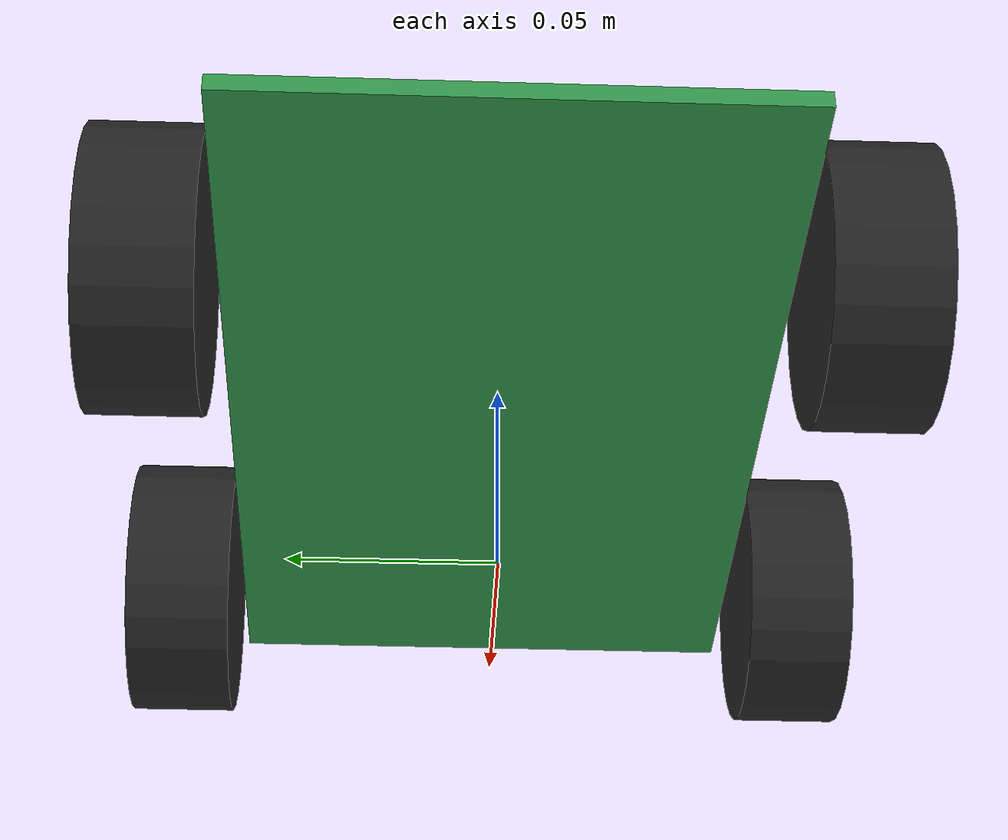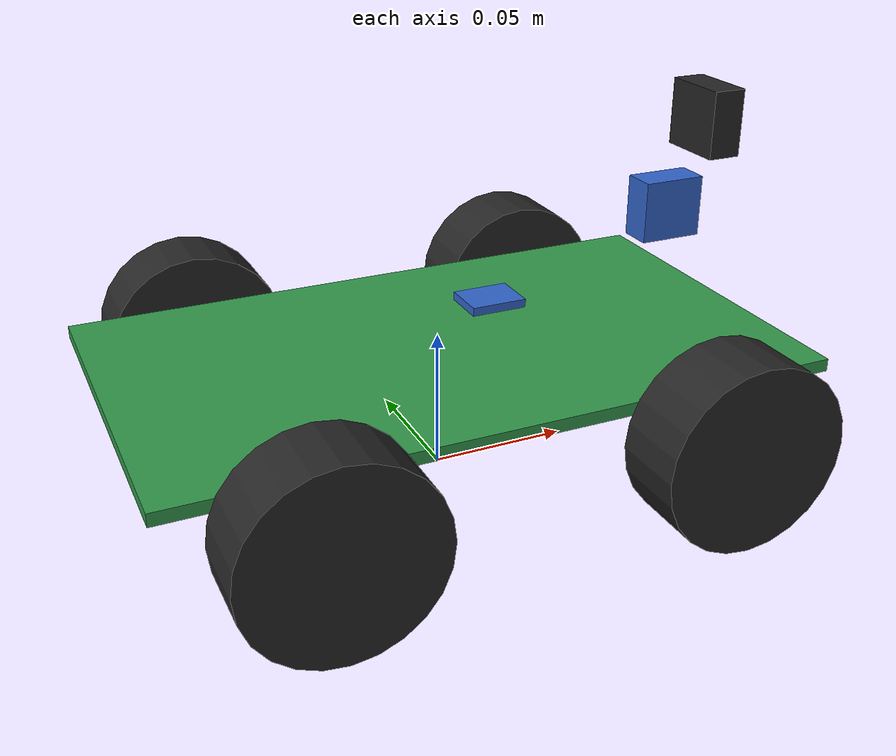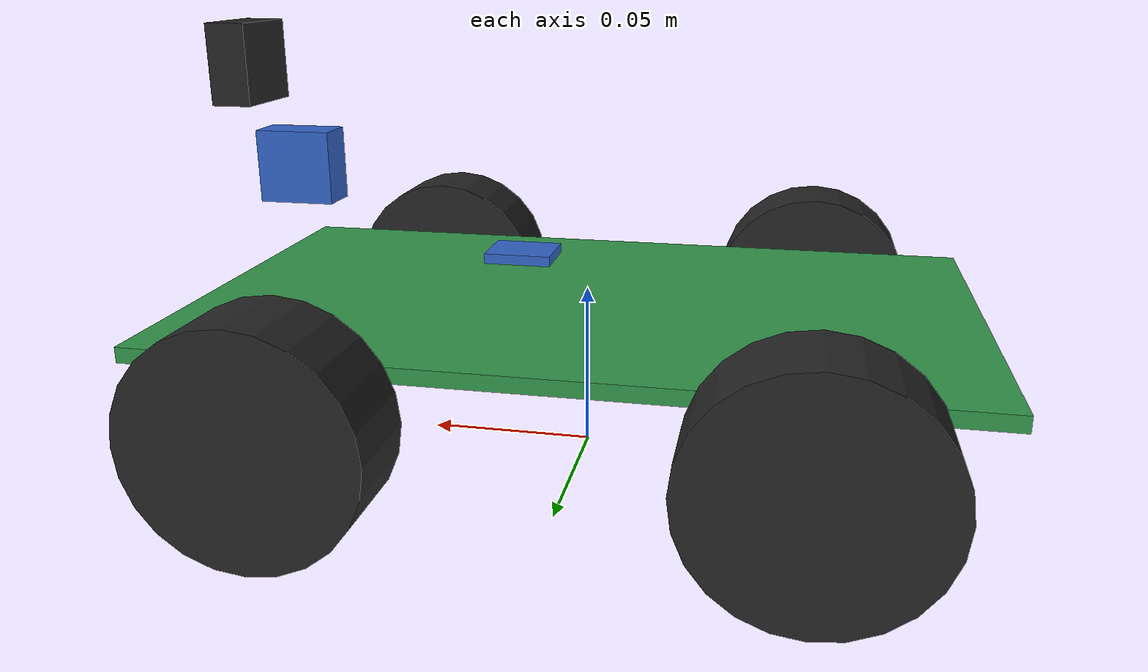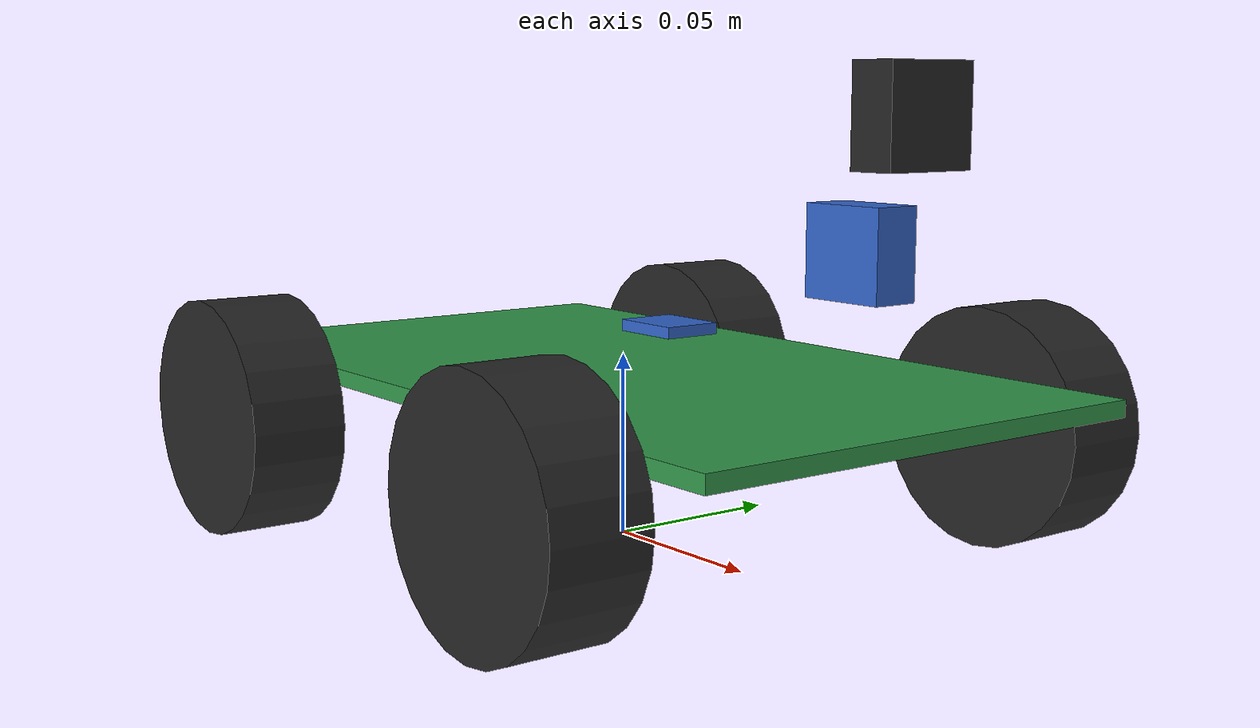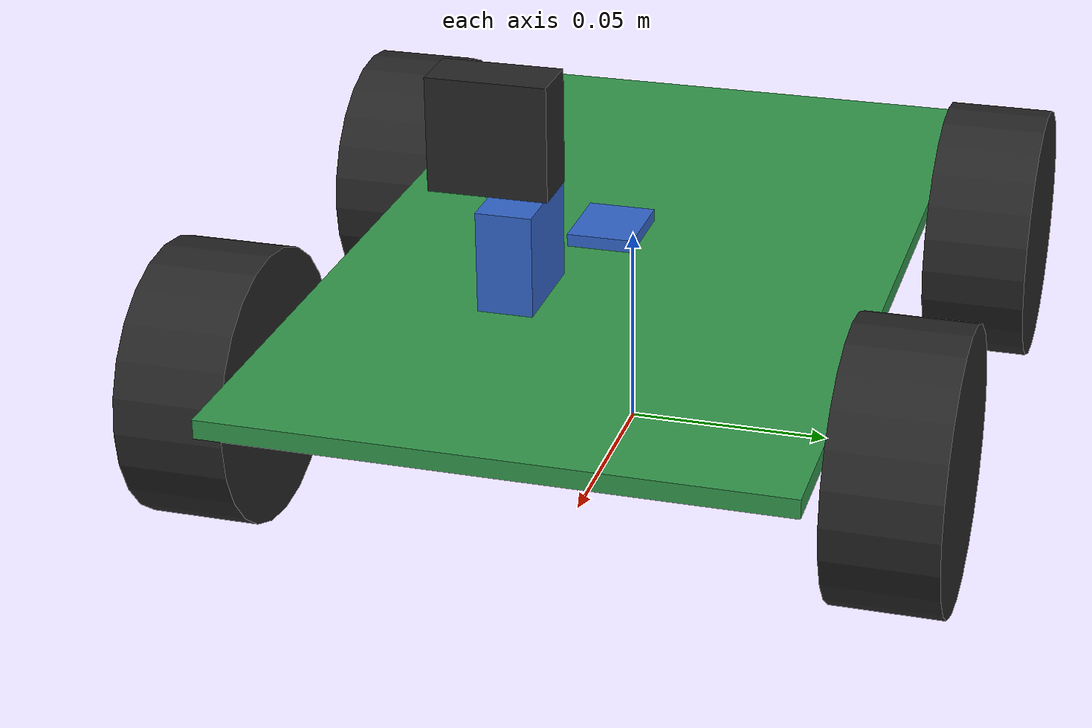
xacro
<?xml version="1.0"?>
<robot name="scout" xmlns:xacro="http://www.ros.org/wiki/xacro">

    <!-- ===== Measurements (metres, radians). Source in each comment. ===== -->
    <!-- Chassis: Elegoo V4 plate, from the kit STL -->
    <xacro:property name="plate_x" value="0.2308" />
    <xacro:property name="plate_y" value="0.1325" />
    <xacro:property name="plate_t" value="0.0045" />
    <xacro:property name="deck_z" value="0.045" />   <!-- MEASURE: floor to top of the lower plate -->
    <!-- Wheels: Elegoo TT wheel -->
    <xacro:property name="wheel_r" value="0.0325" />
    <xacro:property name="wheel_w" value="0.026" />
    <xacro:property name="wheel_x" value="0.068" />   <!-- MEASURE: chassis centre to axle, forward -->
    <xacro:property name="wheel_y" value="0.080" />   <!-- MEASURE: half the track width -->
    <!-- IMU (MPU-6050): position MEASURE; rotation from Lab 2.2 (chip axes = robot axes) -->
    <xacro:property name="imu_x" value="0.020" />
    <xacro:property name="imu_y" value="0.000" />
    <xacro:property name="imu_z" value="0.060" />
    <!-- Pan servo: MEASURE from chassis centre to the servo's rotation axis -->
    <xacro:property name="pan_x" value="0.090" />
    <xacro:property name="pan_y" value="0.000" />
    <xacro:property name="pan_z" value="0.085" />
    <xacro:property name="pan_limit" value="${pi/2}" />  <!-- base.yaml pan_min/pan_max -->
    <!-- Camera: MEASURE from the servo axis to the lens -->
    <xacro:property name="cam_x" value="0.015" />
    <xacro:property name="cam_z" value="0.020" />

    <!-- ===== Materials ===== -->
    <material name="dark">
        <color rgba="0.15 0.15 0.15 1" />
    </material>
    <material name="green">
        <color rgba="0.2 0.6 0.3 1" />
    </material>
    <material name="blue">
        <color rgba="0.2 0.4 0.8 1" />
    </material>

    <link name="base_link">
        <visual>
            <origin xyz="0 0 ${deck_z}" />               <!-- the plate sits deck_z above the floor -->
            <geometry>
                <box size="${plate_x} ${plate_y} ${plate_t}" />
            </geometry>
            <material name="green" />
        </visual>
    </link>

    <link name="imu_link">
        <visual>
            <geometry>
                <box size="0.02 0.016 0.003" />
            </geometry>
            <material name="blue" />
        </visual>
    </link>
    <joint name="imu_joint" type="fixed">
        <parent link="base_link" />
        <child link="imu_link" />
        <origin xyz="${imu_x} ${imu_y} ${imu_z}" rpy="0 0 0" />
    </joint>

    <xacro:macro name="wheel" params="name x y">
        <link name="${name}_wheel_link">
            <visual>
                <origin rpy="${pi/2} 0 0" />                <!-- a cylinder stands along z; roll it onto its side -->
                <geometry>
                    <cylinder radius="${wheel_r}" length="${wheel_w}" />
                </geometry>
                <material name="dark" />
            </visual>
        </link>
        <joint name="${name}_wheel_joint" type="fixed"> <!-- fixed: no encoders, see Background -->
            <parent link="base_link" />
            <child link="${name}_wheel_link" />
            <origin xyz="${x} ${y} ${wheel_r}" />         <!-- axle height = wheel radius -->
        </joint>
    </xacro:macro>
    <xacro:wheel name="front_left" x="${wheel_x}" y="${wheel_y}" />
    <xacro:wheel name="front_right" x="${wheel_x}" y="${-wheel_y}" />
    <xacro:wheel name="rear_left" x="${-wheel_x}" y="${wheel_y}" />
    <xacro:wheel name="rear_right" x="${-wheel_x}" y="${-wheel_y}" />

    <!-- ===== Pan servo and camera (defaults above: replace with measurements later) ===== -->
    <link name="pan_base_link">
        <visual>
            <geometry>
                <box size="0.023 0.012 0.022" />
            </geometry>
            <material name="blue" />
        </visual>
    </link>
    <joint name="pan_base_joint" type="fixed">
        <parent link="base_link" />
        <child link="pan_base_link" />
        <origin xyz="${pan_x} ${pan_y} ${pan_z}" />
    </joint>

    <link name="pan_link" />
    <joint name="pan_joint" type="revolute">   <!-- name must match /joint_states from the bridge -->
        <parent link="pan_base_link" />
        <child link="pan_link" />
        <origin xyz="0 0 0.011" />              <!-- top of the servo horn -->
        <axis xyz="0 0 1" />                     <!-- + = left (REP-103) -->
        <limit lower="${-pan_limit}" upper="${pan_limit}" effort="0.2" velocity="10.0" />
    </joint>

    <link name="camera_link">
        <visual>
            <geometry>
                <box size="0.012 0.025 0.024" />
            </geometry>
            <material name="dark" />
        </visual>
    </link>
    <joint name="camera_joint" type="fixed">
        <parent link="pan_link" />
        <child link="camera_link" />
        <origin xyz="${cam_x} 0 ${cam_z}" />
    </joint>

    <!-- image convention: z forward, x right, y down (used by vision in Lab 8) -->
    <link name="camera_optical_frame" />
    <joint name="camera_optical_joint" type="fixed">
        <parent link="camera_link" />
        <child link="camera_optical_frame" />
        <origin rpy="${-pi/2} 0 ${-pi/2}" />
    </joint>

</robot>
